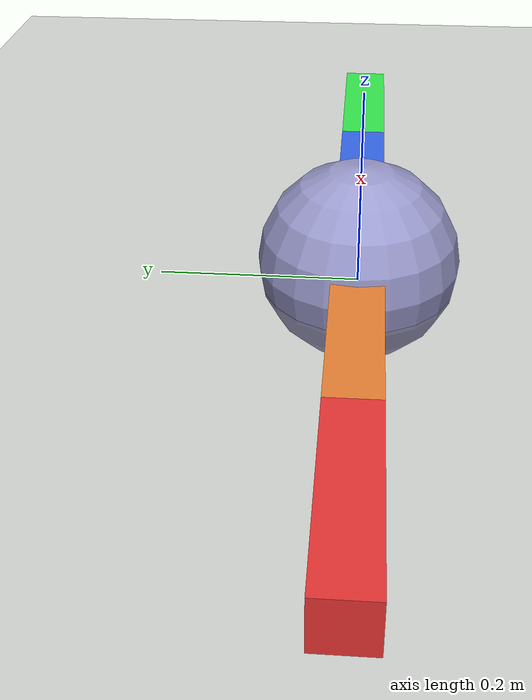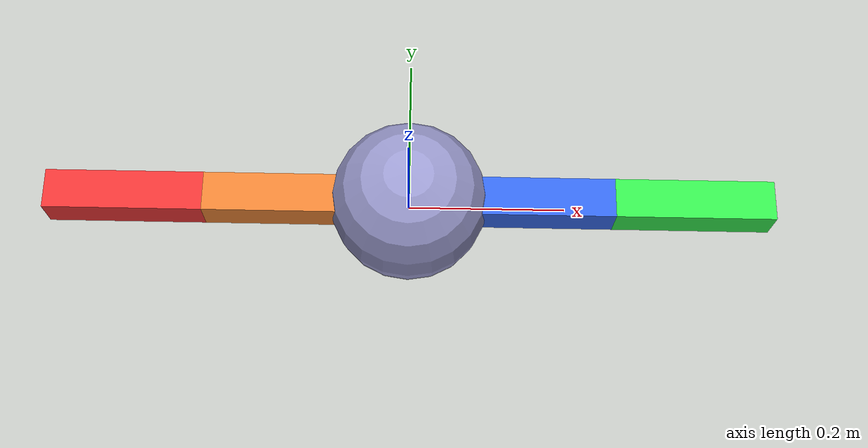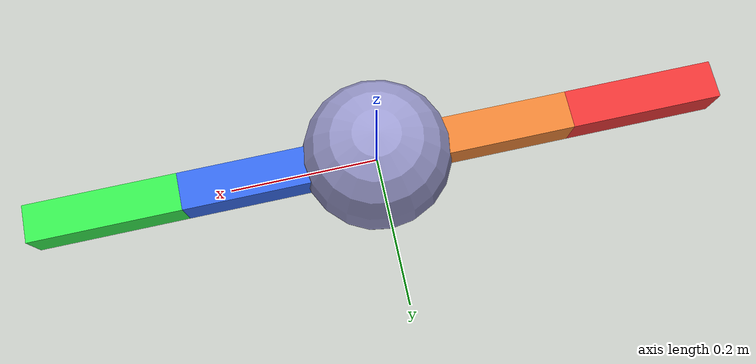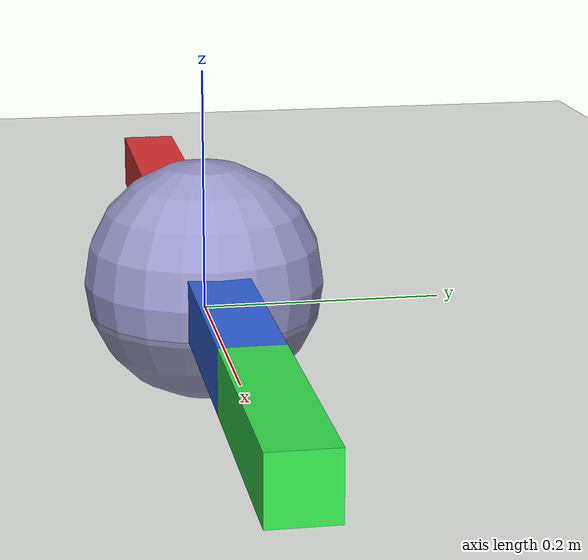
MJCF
<mujoco model="satellite_5dof">
  <option iterations="50" timestep="0.001" solver="PGS" gravity="0 0 -9.81" />

  <compiler angle="radian" meshdir="meshes" eulerseq="zyx" autolimits="true" />

  <default>
    <joint limited="false" damping="0.01" armature="0.01" frictionloss="0.01" />
    <geom condim="4" contype="1" conaffinity="15" friction="0.9 0.2 0.2" solref="0.001 2" />
    <motor ctrllimited="true" ctrlrange="-1 1" gear="1" />
    <equality solref="0.001 2" />
    <default class="visualgeom">
      <geom material="visualgeom" condim="1" contype="0" conaffinity="0" />
    </default>
  </default>

  <worldbody>
    <light directional="true" diffuse="0.4 0.4 0.4" specular="0.1 0.1 0.1"
           pos="0 0 5.0" dir="0 0 -1" castshadow="false" />
    <light directional="true" diffuse="0.6 0.6 0.6" specular="0.2 0.2 0.2"
           pos="0 0 4" dir="0 0 -1" />
    <geom name="ground" type="plane" pos="0 0 0" size="100 100 0.001"
          quat="1 0 0 0" material="matplane" condim="3" conaffinity="15" />
    <camera name="fixed" pos="0 -3.0 0.525" xyaxes="1 0 0 0 0 1" />
    <camera name="track" mode="trackcom" pos="0 -3.0 0.525" xyaxes="1 0 0 0 0 1" />

    <body name="root" pos="0 0 0.025" quat="1 0 0 0">

      <site name="imu" size="0.01" pos="0 0 0" />

      <body name="base">
        <inertial pos="0 0 0" mass="2" diaginertia="0.008 0.008 0.008" />
        <joint name="base_joint" pos="0 0 0" axis="0 0 1" limited="true" range="-3.1416 3.1416"/>
        <geom size="0.1" type="sphere" rgba="0.6 0.6 0.8 1"
              contype="1" conaffinity="0" density="0" group="1" class="visualgeom" />

        <body name="link1" pos="0.16 0 0">
          <inertial pos="0 0 0" mass="1" diaginertia="0.0035 0.0035 0.0004" />
          <joint name="joint1" pos="0 0 0" axis="0 0 1" limited="true" range="-1.5708 1.5708"/>
          <geom size="0.1 0.025 0.025" type="box" rgba="0.2 0.4 0.9 1"
                contype="1" conaffinity="0" density="0" group="1" class="visualgeom" />

          <body name="link2" pos="0.2 0 0">
            <inertial pos="0 0 0" mass="1" diaginertia="0.0035 0.0035 0.0004" />
            <joint name="joint2" pos="0 0 0" axis="0 0 1" limited="true" range="-1.5708 1.5708"/>
            <geom size="0.1 0.025 0.025" type="box" rgba="0.2 0.9 0.3 1"
                  contype="1" conaffinity="0" density="0" group="1" class="visualgeom" />
          </body>
        </body>

        <body name="link3" pos="-0.16 0 0">
          <inertial pos="0 0 0" mass="1" diaginertia="0.0035 0.0035 0.0004" />
          <joint name="joint3" pos="0 0 0" axis="0 0 1" limited="true" range="-1.5708 1.5708"/>
          <geom size="0.1 0.025 0.025" type="box" rgba="0.9 0.5 0.2 1"
                contype="1" conaffinity="0" density="0" group="1" class="visualgeom" />

          <body name="link4" pos="-0.2 0 0">
            <inertial pos="0 0 0" mass="1" diaginertia="0.0035 0.0035 0.0004" />
            <joint name="joint4" pos="0 0 0" axis="0 0 1" limited="true" range="-1.5708 1.5708"/>
            <geom size="0.1 0.025 0.025" type="box" rgba="0.9 0.2 0.2 1"
                  contype="1" conaffinity="0" density="0" group="1" class="visualgeom" />
          </body>
        </body>
      </body>
    </body>
  </worldbody>

  <asset>
    <texture name="texplane" type="2d" builtin="checker" rgb1=".0 .0 .0" rgb2=".8 .8 .8"
             width="100" height="100" />
    <material name="matplane" reflectance="0." texture="texplane" texrepeat="1 1"
              texuniform="true" />
    <material name="visualgeom" rgba="0.5 0.9 0.2 1" />
  </asset>

  <actuator>
    <motor name="base_joint_act" joint="base_joint" />
    <motor name="joint1_act" joint="joint1" />
    <motor name="joint2_act" joint="joint2" />
    <motor name="joint3_act" joint="joint3" />
    <motor name="joint4_act" joint="joint4" />
  </actuator>

  <sensor>
    <!-- Joint state sensors -->
    <jointpos name="base_joint_p" joint="base_joint" />
    <jointvel name="base_joint_v" joint="base_joint" />

    <jointpos name="joint1_p" joint="joint1" />
    <jointvel name="joint1_v" joint="joint1" />

    <jointpos name="joint2_p" joint="joint2" />
    <jointvel name="joint2_v" joint="joint2" />

    <jointpos name="joint3_p" joint="joint3" />
    <jointvel name="joint3_v" joint="joint3" />

    <jointpos name="joint4_p" joint="joint4" />
    <jointvel name="joint4_v" joint="joint4" />

    <!-- Actuator force sensors -->
    <actuatorfrc name="base_joint_f" actuator="base_joint_act" />
    <actuatorfrc name="joint1_f" actuator="joint1_act" />
    <actuatorfrc name="joint2_f" actuator="joint2_act" />
    <actuatorfrc name="joint3_f" actuator="joint3_act" />
    <actuatorfrc name="joint4_f" actuator="joint4_act" />

    <!-- IMU-like sensors -->
    <framequat name="orientation" objtype="site" objname="imu" noise="0.001" />
    <gyro name="angular_velocity" site="imu" noise="0.005" cutoff="34.9" />
  </sensor>
</mujoco>
